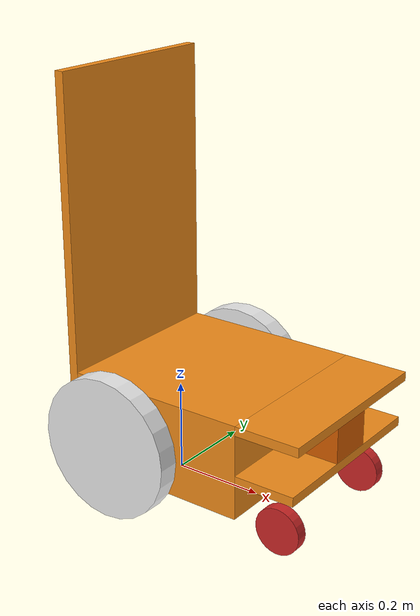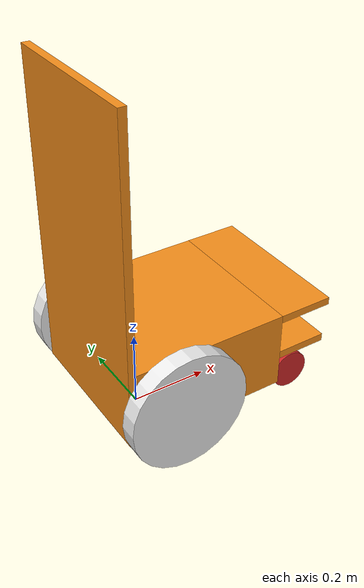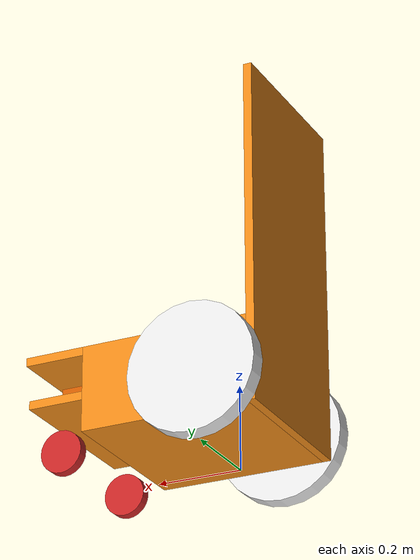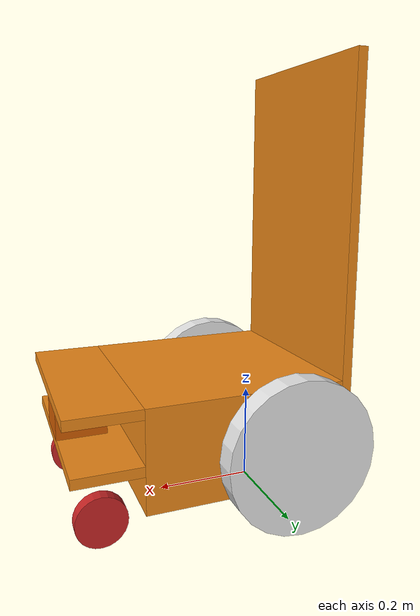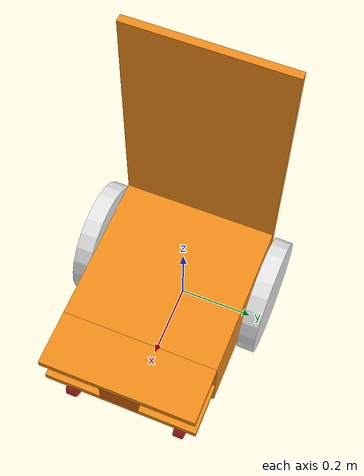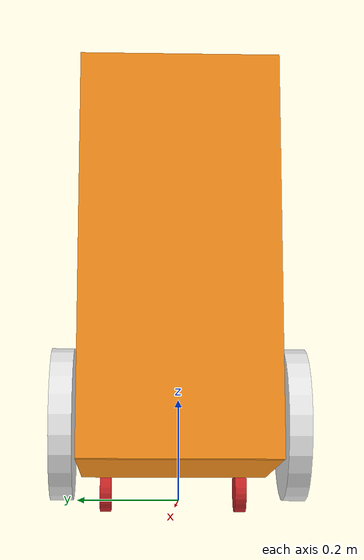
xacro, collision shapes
<?xml version="1.0" ?>
<robot name="orne_box" xmlns:xacro="http://www.ros.org/wiki/xacro">
  <xacro:property name="PI" value="3.1415926535897931"/>
  <xacro:include filename="$(find icart_mini_description)/urdf/materials.xacro" />
  <xacro:include filename="$(find orne_box_description)/urdf/orne_box.gazebo.xacro"/>

  <link name="base_link">
    <visual>
      <origin xyz="0.090 0 0.1715" rpy="0 0 0"/>
      <geometry>
        <box size="0.400 0.404 0.202"/>
      </geometry>
      <material name="orange"/>
    </visual>
    <visual>
      <origin xyz="0.36125 0 0.2625" rpy="0 0 0"/>
      <geometry>
        <box size="0.1425 0.404 0.020"/>
      </geometry>
      <material name="orange"/>
    </visual>
    <visual>
      <origin xyz="0.35625 0 0.156" rpy="0 0 0"/>
      <geometry>
        <box size="0.1325 0.404 0.020"/>
      </geometry>
      <material name="orange"/>
    </visual>
    <visual>
      <origin xyz="-0.120 0 0.4815" rpy="0 0 0"/>
      <geometry>
        <box size="0.020 0.404 0.822"/>
      </geometry>
      <material name="orange"/>
    </visual>

    <collision>
      <origin xyz="0.090 0 0.1715" rpy="0 0 0"/>
      <geometry>
        <box size="0.400 0.404 0.202"/>
      </geometry>
    </collision>
    <collision>
      <origin xyz="0.36125 0 0.2625" rpy="0 0 0"/>
      <geometry>
        <box size="0.1425 0.404 0.020"/>
      </geometry>
    </collision>
    <collision>
      <origin xyz="0.35625 0 0.156" rpy="0 0 0"/>
      <geometry>
        <box size="0.1325 0.404 0.020"/>
      </geometry>
    </collision>
    <collision>
      <origin xyz="-0.120 0 0.4815" rpy="0 0 0"/>
      <geometry>
        <box size="0.020 0.404 0.822"/>
      </geometry>
    </collision>

    <inertial>
      <origin xyz="0.090 0 0.1715" rpy="0 0 0"/>
      <mass value="25.0"/>
      <inertia ixx="1.0" ixy="0.0" ixz="0.0" iyy="1.0" iyz="0.0" izz="1.0" />
    </inertial>
  </link>

  <joint name="left_wheel_hinge" type="revolute">
    <parent link="base_link"/>
    <child link="wheel_left_link"/>
    <origin xyz="0.0 0.23075 0.152" rpy="${-PI/2} 0 0"/>
    <axis xyz="0 0 1"/>
    <limit effort="100" velocity="100.0"  lower="-5000" upper="5000" />
  </joint>

  <link name="wheel_left_link">
    <visual>
      <origin xyz="0 0 0" rpy="0 0 0"/>
      <geometry>
        <mesh filename="package://orne_box_description/meshes/wheels/tire.stl" scale="1 1 1"/>
      </geometry>
      <material name="white"/>
    </visual>

    <collision>
      <origin xyz="0 0 0" rpy="0 0 0"/>
      <geometry>
        <cylinder length="0.045" radius="0.152"/>
      </geometry>
    </collision>

    <inertial>
      <origin xyz="0 0 0" />
      <mass value="0.2" />
      <inertia ixx="0.1" ixy="0.0" ixz="0.0" iyy="0.1" iyz="0.0" izz="0.1" />
    </inertial>

  </link>

  <joint name="right_wheel_hinge" type="revolute">
    <parent link="base_link"/>
    <child link="wheel_right_link"/>
    <origin xyz="0.0 -0.23075 0.152" rpy="${-PI/2} 0 0"/>
    <axis xyz="0 0 1"/>
    <limit effort="100" velocity="100.0"  lower="-5000" upper="5000" />
  </joint>

  <link name="wheel_right_link">
    <visual>
      <origin xyz="0 0 0" rpy="0 0 0"/>
      <geometry>
        <mesh filename="package://orne_box_description/meshes/wheels/tire.stl" scale="1 1 1"/>
      </geometry>
      <material name="white"/>
    </visual>

    <collision>
      <origin xyz="0 0 0" rpy="0 0 0"/>
      <geometry>
        <cylinder length="0.045" radius="0.152"/>
      </geometry>
    </collision>

    <inertial>
      <origin xyz="0 0 0" />
      <mass value="0.2" />
      <inertia ixx="0.1" ixy="0.0" ixz="0.0" iyy="0.1" iyz="0.0" izz="0.1" />
    </inertial>

  </link>

  <joint name="caster_front_joint" type="fixed">
    <parent link="base_link"/>
    <child link="caster_front_link"/>
    <origin xyz="0.362 0 0.050" rpy="0 0 0"/>
  </joint>

  <link name="caster_front_link">
    <visual>
      <origin xyz="0 0.150 0" rpy="${PI/2} 0 0"/>
      <geometry>
        <cylinder length="0.025" radius="0.050"/>
      </geometry>
      <material name="red"/>
    </visual>
    <visual>
      <origin xyz="0 -0.150 0" rpy="${PI/2} 0 0"/>
      <geometry>
        <cylinder length="0.025" radius="0.050"/>
      </geometry>
      <material name="red"/>
    </visual>

    <collision>
      <origin xyz="0 0.150 0" rpy="${PI/2} 0 0"/>
      <geometry>
        <cylinder length="0.025" radius="0.050"/>
      </geometry>
    </collision>
    <collision>
      <origin xyz="0 -0.150 0" rpy="${PI/2} 0 0"/>
      <geometry>
        <cylinder length="0.025" radius="0.050"/>
      </geometry>
    </collision>

    <inertial>
      <origin xyz="0 0 0" />
      <mass value="0.2" />
      <inertia ixx="0.1" ixy="0.0" ixz="0.0" iyy="0.1" iyz="0.0" izz="0.1" />
    </inertial>
  </link>

  <xacro:include filename="$(find icart_mini_description)/urdf/sensors/imu.urdf.xacro"/>
  <!-- Setting for imu -->
  <xacro:sensor_imu name="imu" parent="base_link" size="0.05 0.05 0.05">
    <origin xyz="0.3 0 0.2445" rpy="0 0 ${-PI/2}"/>
  </xacro:sensor_imu>

  <xacro:include filename="$(find icart_mini_description)/urdf/sensors/hokuyo.urdf.xacro"/>
  <xacro:sensor_hokuyo name="hokuyo" parent="base_link">
    <origin xyz="0.374295 0 0.2185" rpy="0 0 0"/>
  </xacro:sensor_hokuyo>

  <transmission name="tran1">
    <type>transmission_interface/SimpleTransmission</type>
    <joint name="left_wheel_hinge">
      <hardwareInterface>VelocityJointInterface</hardwareInterface>
    </joint>
  <actuator name="left_motor">
      <hardwareInterface>VelocityJointInterface</hardwareInterface>
      <mechanicalReduction>1</mechanicalReduction>
    </actuator>
  </transmission>

  <transmission name="tran2">
    <type>transmission_interface/SimpleTransmission</type>
    <joint name="right_wheel_hinge">
      <hardwareInterface>VelocityJointInterface</hardwareInterface>
    </joint>
  <actuator name="right_motor">
      <hardwareInterface>VelocityJointInterface</hardwareInterface>
      <mechanicalReduction>1</mechanicalReduction>
    </actuator>
  </transmission>

</robot>

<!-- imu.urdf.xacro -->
<robot name="sensor_imu" xmlns:xacro="http://ros.org/wiki/xacro"
                         xmlns:controller="http://playerstage.sourceforge.net/gazebo/xmlschema/#controller"
                         xmlns:interface="http://playerstage.sourceforge.net/gazebo/xmlschema/#interface">

  <xacro:macro name="sensor_imu" params="name parent *origin size">
	  <joint name="${name}_joint" type="fixed">
	      <axis xyz="1 0 0"/>
	      <xacro:insert_block name="origin"/>
	      <parent link="${parent}"/>
	      <child link="${name}_link"/>
	  </joint>

	  <link name="${name}_link">
	      <inertial>
	        <mass value="0.001"/>
	        <origin rpy="0 0 0" xyz="0 0 0"/>
	        <inertia ixx="0.0001" ixy="0" ixz="0" iyy="0.000001" iyz="0" izz="0.0001"/>
	      </inertial>
	      <visual>
	        <origin rpy="0 0 0" xyz="0 0 0"/>
	        <geometry>
	          <box size="${size}"/>
	        </geometry>
	      </visual>
	      <collision>
	        <origin rpy="0 0 0" xyz="0 0 0"/>
	        <geometry>
	          <box size="${size}"/>
	        </geometry>
	      </collision>
	  </link>

	  <gazebo>
        <plugin name="ros_imu" filename="libgazebo_ros_imu.so">
            <bodyName>imu_link</bodyName> <!-- bodyName always set base_link by URDF parser -->
            <topicName>imu_data</topicName>
            <serviceName>imu_service</serviceName>
            <gaussianNoise>0.005</gaussianNoise>
	    <updateRate>100.0</updateRate>
        </plugin>
      </gazebo>
  </xacro:macro>

</robot>

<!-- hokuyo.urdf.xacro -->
<robot name="sensor_hokuyo" xmlns:xacro="http://ros.org/wiki/xacro"
                              xmlns:controller="http://playerstage.sourceforge.net/gazebo/xmlschema/#controller"
                              xmlns:interface="http://playerstage.sourceforge.net/gazebo/xmlschema/#interface">

  <xacro:property name="hokuyo_link" value="0.1" /> <!-- Size of square 'hokuyo' box -->
  <xacro:macro name="sensor_hokuyo" params="name parent *origin">
    <joint name="${name}_joint" type="fixed">
      <axis xyz="0 1 0"/>
      <xacro:insert_block name="origin"/>
      <parent link="${parent}"/>
      <child link="${name}_link"/>
    </joint>

    <link name="${name}_link">
      <collision>
        <origin xyz="0 0 0" rpy="0 0 0"/>
        <geometry>
            <box size="${hokuyo_link} ${hokuyo_link} ${hokuyo_link}"/>
        </geometry>
      </collision>

      <visual>
        <origin xyz="0 0 0" rpy="0 0 0"/>
        <geometry>
          <mesh filename="package://icart_mini_description/meshes/hokuyo.dae"/>
        </geometry>
      </visual>

      <inertial>
        <mass value="0.0001"/>
        <origin xyz="0 0 0" rpy="0 0 0"/>
        <inertia ixx="0.0001" ixy="0" ixz="0" iyy="0.0001" iyz="0" izz="0.0001"/>
      </inertial>
    </link>

  </xacro:macro>

</robot>
